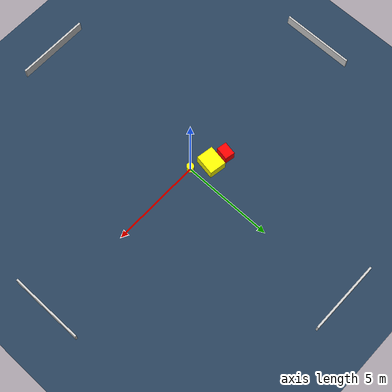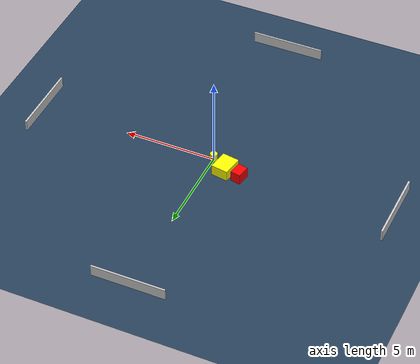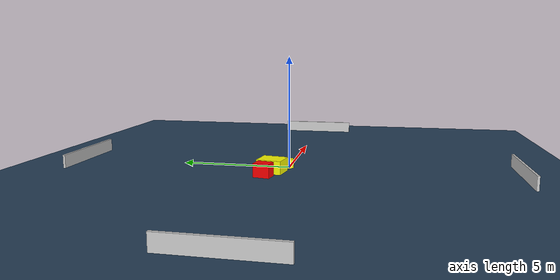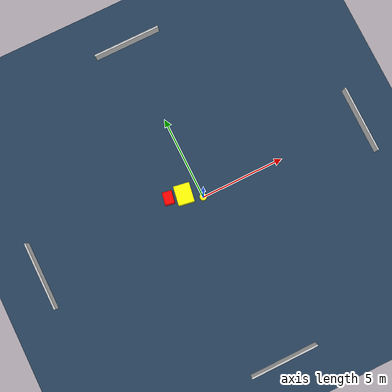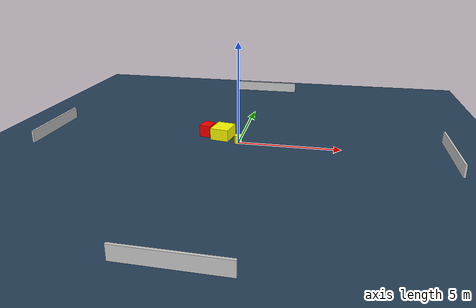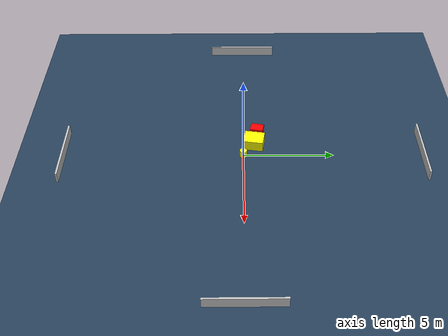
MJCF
<?xml version="1.0" ?>
<mujoco model="generated_environment">
  <option timestep="0.01" integrator="RK4" cone="elliptic"/>
  <default>
    <geom density="1"/>
  </default>
  <asset>
    <texture builtin="gradient" height="3072" name="skybox" rgb1="0.3 0.5 0.7" rgb2="0 0 0" type="skybox" width="512"/>
    <texture builtin="checker" height="300" name="groundplane" rgb1="0.2 0.3 0.4" rgb2="0.1 0.2 0.3" type="2d" width="300"/>
    <material name="groundplane" reflectance="0.2" texrepeat="5 5" texture="groundplane"/>
  </asset>
  <worldbody>
    <light dir="0 0 -1" directional="true" pos="0 0 1.5"/>
    <geom condim="3" friction="0.5 0.005 0.001" material="groundplane" name="floor" pos="0 0 0" size="0 0 0.05" type="plane"/>
    <body name="walls">
      <geom name="wall_1" condim="4" pos="-10.0 0.0 0.3" rgba="0.800000011920929 0.800000011920929 0.800000011920929 1.0" size="0.05 2.0 0.3" type="box"/>
      <geom name="wall_2" condim="4" pos="10.0 0.0 0.3" rgba="0.800000011920929 0.800000011920929 0.800000011920929 1.0" size="0.05 2.0 0.3" type="box"/>
      <geom name="wall_3" condim="4" pos="0.0 -10.0 0.3" rgba="0.800000011920929 0.800000011920929 0.800000011920929 1.0" size="2.0 0.05 0.3" type="box"/>
      <geom name="wall_4" condim="4" pos="0.0 10.0 0.3" rgba="0.800000011920929 0.800000011920929 0.800000011920929 1.0" size="2.0 0.05 0.3" type="box"/>
    </body>
    <body name="robot">
      <joint name="joint_x" type="slide" pos="0 0 0" axis="1 0 0"/>
      <joint name="joint_y" type="slide" pos="0 0 0" axis="0 1 0"/>
      <geom name="robot" type="cylinder" pos="0.0 0.0 0.2" size="0.2 0.2 0.0" mass="5.0" friction="1.0 0.005 0.0001" condim="4" rgba="1.0 1.0 0.0 1.0"/>
    </body>
    <body name="obstacle_1_movable">
      <geom name="obstacle_1_movable" condim="4" pos="-0.908336047531079 0.6046021737933004 0.3" euler="0 0 80.65341790322098" friction="0.0 0.005 0.001" rgba="1.0 1.0 0.0 1.0" size="0.5595569583383233 0.4680157998880161 0.3" type="box" mass="0.1"/>
      <joint type="free"/>
    </body>
    <body name="obstacle_2_static">
      <geom name="obstacle_2_static" condim="4" pos="-1.781396032845829 0.7941605961277298 0.3" euler="0 0 349.5029247089642" friction="0.0 0.005 0.001" rgba="1.0 0.0 0.0 1.0" size="0.2772816964029364 0.3617935323502458 0.3" type="box"/>
    </body>
  </worldbody>
  <actuator>
    <motor name="actuator_x" joint="joint_x" gear="1" ctrlrange="-1 1"/>
    <motor name="actuator_y" joint="joint_y" gear="1" ctrlrange="-1 1"/>
  </actuator>
</mujoco>
